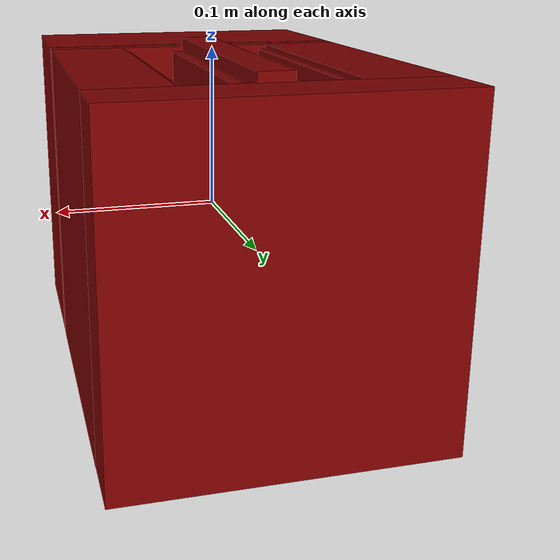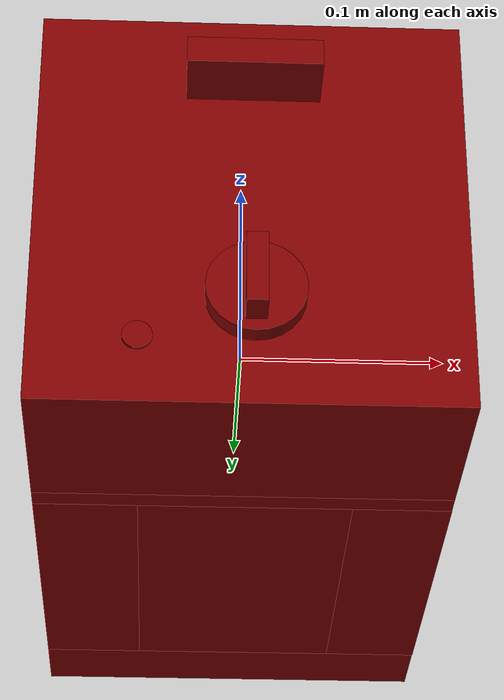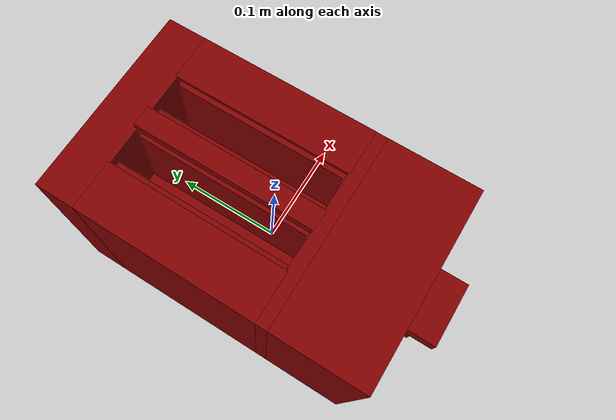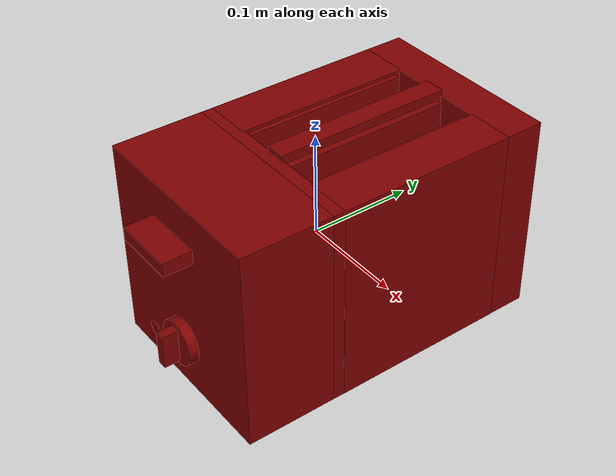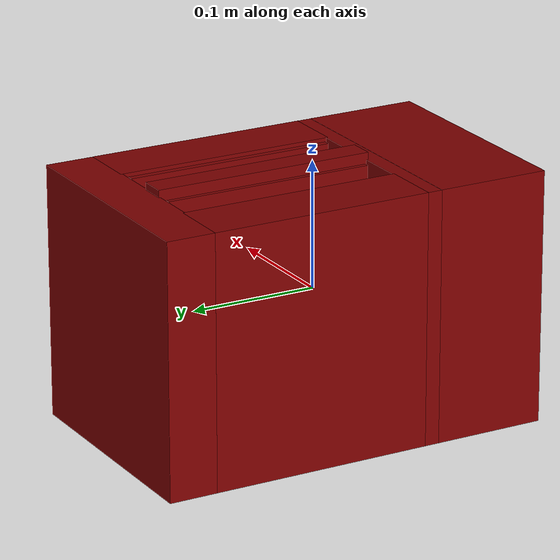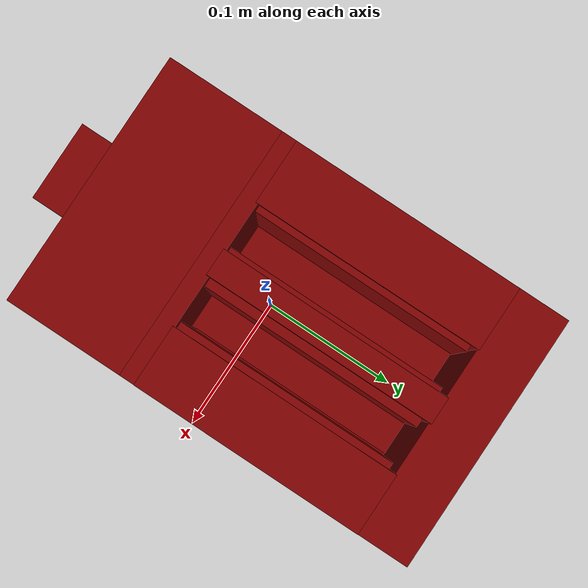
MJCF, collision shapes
<?xml version='1.0' encoding='UTF-8'?>
<mujoco model="model">
  <option timestep="0.002" gravity="0.0 0.0 -9.81"/>
  <compiler angle="radian"/>
  <asset>
    <mesh file="visuals/button_cancel.obj" name="button_cancel_vis"/>
    <mesh file="visuals/knob_doneness.obj" name="knob_doneness_vis"/>
    <mesh file="visuals/lever.obj" name="lever_vis"/>
    <mesh file="visuals/Body001.obj" name="Body001_vis"/>
    <mesh file="visuals/Body002.obj" name="Body002_vis"/>
    <texture file="visuals/T_BC001.png" name="Body001_material" type="2d"/>
    <material name="Body001_material" rgba="1 1 1 1.0" texture="Body001_material" shininess="0.141421377658844" specular="3"/>
    <texture file="visuals/T_BC001.png" name="button_cancel_material" type="2d"/>
    <material name="button_cancel_material" rgba="1 1 1 1.0" texture="button_cancel_material" shininess="0.141421377658844" specular="0.3103448502657381"/>
    <texture file="visuals/T_BC001.png" name="knob_doneness_material" type="2d"/>
    <material name="knob_doneness_material" rgba="1 1 1 1.0" texture="knob_doneness_material" shininess="0.141421377658844" specular="0.3103448502657381"/>
    <texture file="visuals/T_BC001.png" name="lever_material" type="2d"/>
    <material name="lever_material" rgba="1 1 1 1.0" texture="lever_material" shininess="0.141421377658844" specular="0.3103448502657381"/>
    <texture file="visuals/T_BC001.png" name="Body002_material" type="2d"/>
    <material name="Body002_material" rgba="1 1 1 1.0" texture="Body002_material" shininess="0.141421377658844" specular="4"/>
  </asset>
  <default>
    <default class="visual">
      <geom conaffinity="0" contype="0" group="1" type="mesh"/>
    </default>
    <default class="collision_1">
      <geom group="0" rgba="0.5 0 0 0.5" solref="0.004 1" solimp="0.998 0.998 0.001"/>
    </default>
    <default class="collision_2">
      <geom group="0" rgba="0.5 0 0 0.5" solref="0.004 1" solimp="0.998 0.998 0.001"/>
    </default>
    <default class="collision_3">
      <geom group="0" rgba="0.5 0 0 0.5" solref="0.004 1" solimp="0.998 0.998 0.001"/>
    </default>
    <default class="collision_4">
      <geom group="0" rgba="0.5 0 0 0.5" solref="0.004 1" solimp="0.998 0.998 0.001"/>
    </default>
    <default class="collision_5">
      <geom group="0" rgba="0.5 0 0 0.5" solref="0.004 1" solimp="0.998 0.998 0.001"/>
    </default>
    <default class="spawn">
      <geom group="0" rgba="1 1 1 0.5" contype="0" conaffinity="0"/>
      <site group="0" rgba="1 1 1 0.5"/>
    </default>
    <default class="region">
      <geom group="1" conaffinity="0" contype="0" rgba="0 1 0 0" mass="0"/>
    </default>
  </default>
  <worldbody>
    <body>
      <body name="object">
        <geom mesh="Body001_vis" type="mesh" solimp="0.998 0.998 0.001" solref="0.001 1" friction="0.95 0.3 0.1" class="visual" material="Body001_material"/>
        <geom type="box" pos="0.00015315 -0.09687475 -0.00218166" size="0.0953393504023552 0.04395647346973419 0.0989496186375618" quat="1.0 0.0 0.0 0.0" class="collision_1"/>
        <geom type="box" pos="0.00015315 0.15070231 -0.00221224" size="0.09534098953008652 0.019704565405845642 0.09890475124120712" quat="1.0 0.0 0.0 0.0" class="collision_1"/>
        <geom type="box" pos="0.00015315 -0.04664800 -0.00221224" size="0.09534108638763428 0.006565386429429054 0.09890485554933548" quat="1.0 0.0 0.0 0.0" class="collision_1"/>
        <geom type="box" pos="-0.07104149 0.04535100 -0.00221224" size="0.024147508665919304 0.08704215288162231 0.09890495240688324" quat="1.0 0.0 0.0 0.0" class="collision_1"/>
        <geom type="box" pos="0.07267273 0.04535100 -0.00221224" size="0.022989751771092415 0.08704225718975067 0.0989050567150116" quat="1.0 0.0 0.0 0.0" class="collision_1"/>
        <geom type="box" pos="0.00020051 0.04535100 0.00061304" size="0.010102525353431702 0.08704235404729843 0.10173044353723526" quat="1.0 0.0 0.0 0.0" class="collision_1"/>
        <geom type="box" pos="0.00128836 0.04535100 -0.08473399" size="0.048959311097860336 0.08704255521297455 0.016384270042181015" quat="1.0 0.0 0.0 0.0" class="collision_1"/>
        <body name="button_cancel">
          <joint axis="0.0 1.0 0.0" pos="-0.04797791 -0.14162211 -0.07114709" limited="true" name="button_cancel_joint" range="0.0 0.002" type="slide" damping="1" frictionloss="1" armature=".01" stiffness="4" springref="-1"/>
          <geom mesh="button_cancel_vis" type="mesh" solimp="0.998 0.998 0.001" solref="0.001 1" friction="0.95 0.3 0.1" class="visual" material="button_cancel_material"/>
          <geom class="collision_2" type="cylinder" pos="-0.04807917 -0.14356674 -0.07116828" size="0.006570723839104176 0.0006617959006689489" quat="0.7071068286895752 0.7071067690849304 0.0 0.0" name="button_cancel_main"/>
        </body>
        <body name="knob_doneness">
          <joint axis="0.0 1.0 0.0" pos="0.00187530 -0.15320128 -0.04970900" limited="true" name="knob_doneness_joint" range="0.0 5.148721293383272" type="hinge" damping="0.05" frictionloss="0.75" armature="1"/>
          <geom mesh="knob_doneness_vis" type="mesh" solimp="0.998 0.998 0.001" solref="0.001 1" friction="0.95 0.3 0.1" class="visual" material="knob_doneness_material"/>
          <geom type="cylinder" pos="0.00194365 -0.14611754 -0.04960386" size="0.02197224088013172 0.0045138937421143055" quat="0.7071068286895752 0.7071067690849304 0.0 0.0" class="collision_3" friction="100 0.5 0.01"/>
          <geom class="collision_3" type="box" pos="0.00174791 -0.15847141 -0.04960135" size="0.004662684630602598 0.007759850937873125 0.01671404391527176" quat="1.0 0.0 0.0 0.0" name="knob_doneness_main" friction="100 0.5 0.01"/>
        </body>
        <body name="lever">
          <joint axis="0.0 0.0 -1.0" pos="0.00003071 -0.12164092 0.05863849" limited="true" name="lever_joint" range="0.0 0.067" type="slide" damping="1" frictionloss="1" armature=".01" stiffness="1.4" springref="-1.2"/>
          <geom class="region" name="reg_slotL" type="box" pos="-0.027900655 0.037478365 0.09802653" size="0.014286175000000002 0.077405865 0.07599996"/>
          <geom class="region" name="reg_slotR" type="box" pos="0.030542985 0.037478365 0.09802653" size="0.014174615000000002 0.077405865 0.07599996"/>
          <geom mesh="lever_vis" type="mesh" solimp="0.998 0.998 0.001" solref="0.001 1" friction="0.95 0.3 0.1" class="visual" material="lever_material"/>
          <geom class="collision_4" type="box" pos="0.00056402 -0.15714839 0.05839125" size="0.029947616159915924 0.013871277682483196 0.00653734290972352" quat="1.0 0.0 0.0 0.0" name="lever_handle"/>
          <geom class="collision_4" type="box" pos="0.03035497 0.04350617 0.02034030" size="0.01249999925494194 0.08058834820985794 0.0016587985446676612" quat="1.0 0.0 0.0 0.0" name="slotR_floor"/>
          <geom class="collision_4" type="box" pos="-0.02811670 0.04350617 0.02034030" size="0.01249999925494194 0.0805879756808281 0.0016587910940870643" quat="1.0 0.0 0.0 0.0" name="slotL_floor"/>
        </body>
        <body name="Body002">
          <geom mesh="Body002_vis" type="mesh" solimp="0.998 0.998 0.001" solref="0.001 1" friction="0.95 0.3 0.1" class="visual" material="Body002_material"/>
          <geom type="box" pos="0.04856406 0.04350617 -0.00242872" size="0.003973816055804491 0.0826309472322464 0.09608542174100876" quat="1.0 0.0 0.0 0.0" class="collision_5"/>
          <geom type="box" pos="0.01297312 0.04350617 -0.00242872" size="0.003973816055804491 0.0826309472322464 0.09608542174100876" quat="1.0 0.0 0.0 0.0" class="collision_5"/>
          <geom type="box" pos="-0.00972021 0.04350617 -0.00242872" size="0.003973816055804491 0.0826309472322464 0.09608542174100876" quat="1.0 0.0 0.0 0.0" class="collision_5"/>
          <geom type="box" pos="-0.04591003 0.04388128 -0.00242872" size="0.003973816055804491 0.0826309472322464 0.09608542174100876" quat="1.0 0.0 0.0 0.0" class="collision_5"/>
        </body>
        <geom class="region" name="reg_main" type="box" pos="0.0 0.014708995000000002 0.0" size="0.09615 0.156758235 0.1016"/>
      </body>
    </body>
  </worldbody>
  <actuator>
    <motor name="button_cancel_joint_actuator" joint="button_cancel_joint" gear="0.5"/>
    <motor name="knob_doneness_joint_actuator" joint="knob_doneness_joint" gear="5"/>
    <motor name="lever_joint_actuator" joint="lever_joint" gear="2"/>
  </actuator>
</mujoco>
